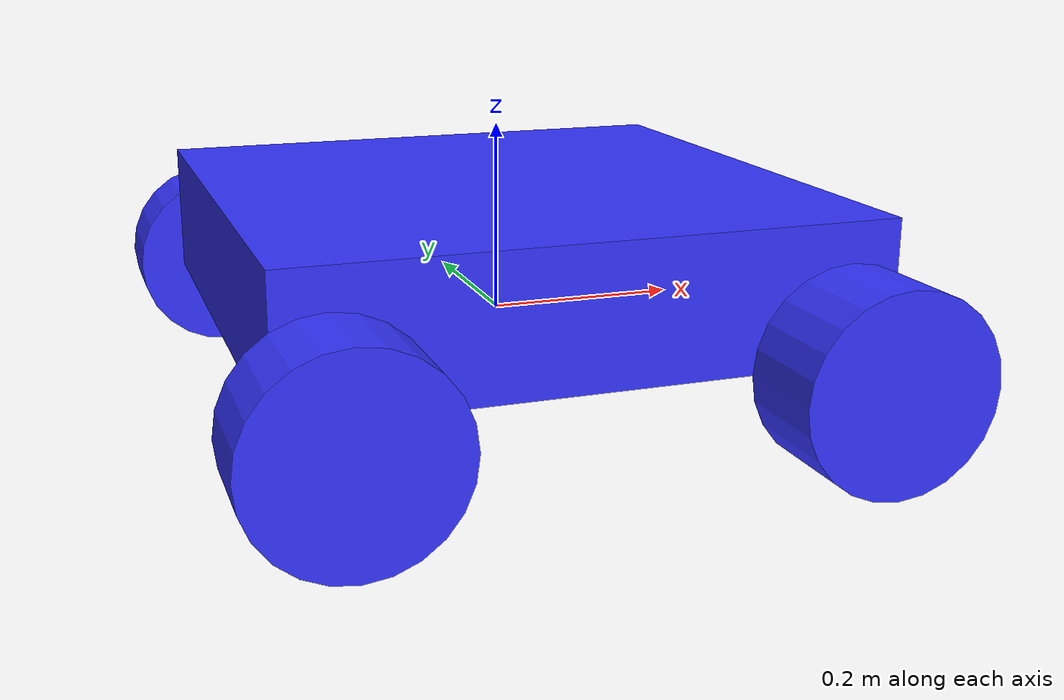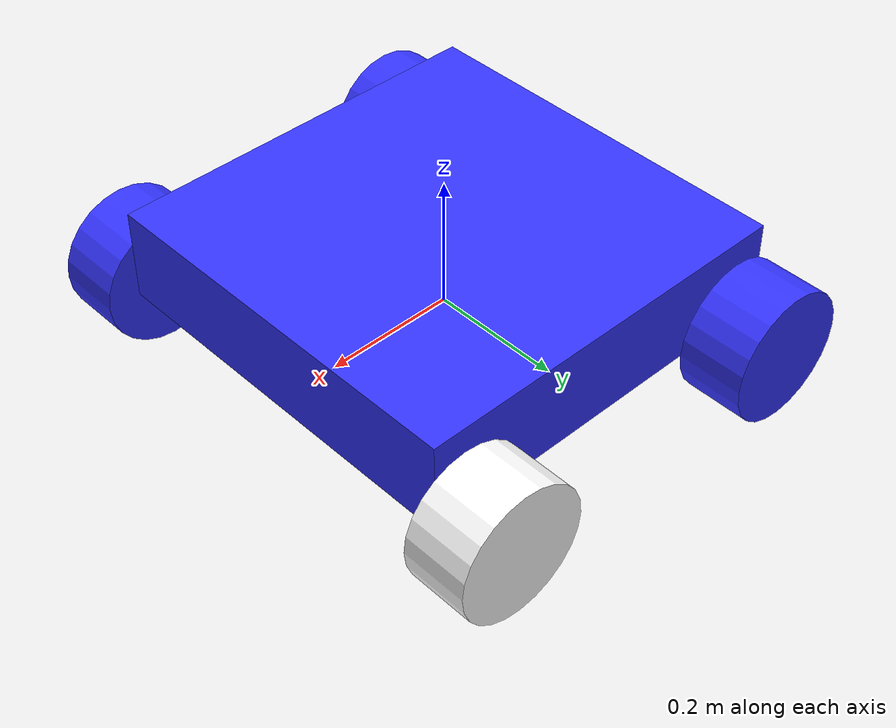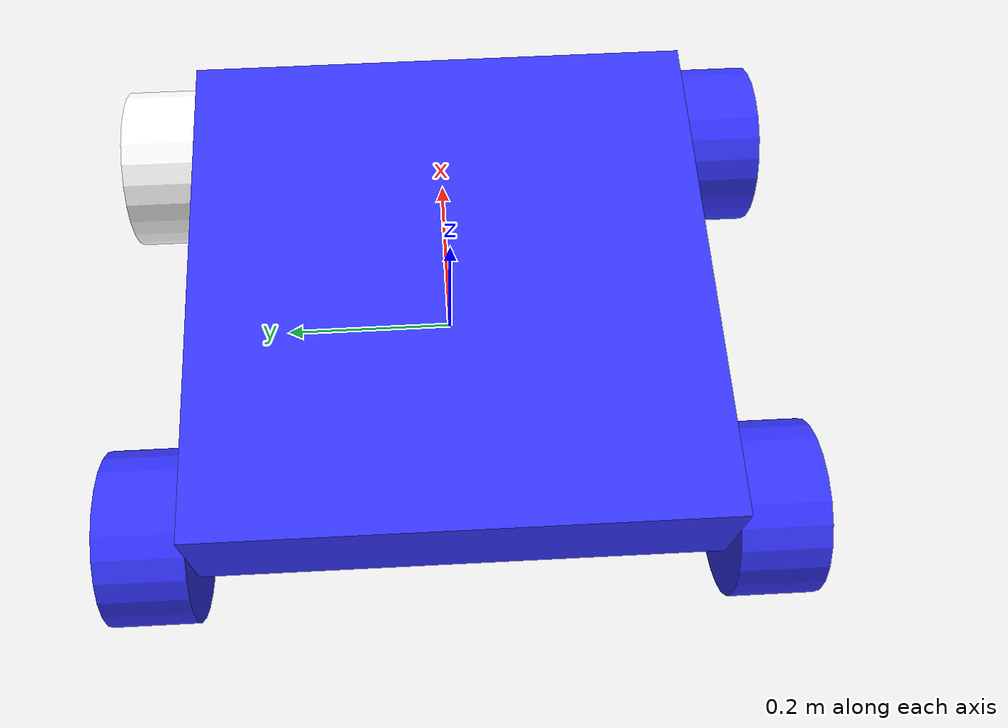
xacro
<?xml version="1.0"?>
<robot xmlns:xacro="http://www.ros.org/wiki/xacro" >

    <xacro:include filename="inertial_macros.xacro"/>

    <material name="white">
        <color rgba="1 1 1 1" />
    </material>

    <material name="orange">
        <color rgba="1 0.3 0.1 1"/>
    </material>

    <material name="blue">
        <color rgba="0.2 0.2 1 1"/>
    </material>

    <material name="black">
        <color rgba="0 0 0 1"/>
    </material>

    <!-- BASE LINK -->

    <link name="base_link">

    </link>

    <!-- CHASSIS LINK -->

    <joint name="chassis_joint" type="fixed">
        <parent link="base_link"/>
        <child link="chassis"/>
        <origin xyz="-0.3 0 0"/>
    </joint>

    <link name="chassis">
        <visual>
            <origin xyz="0.3 0 .07"/>
            <geometry>
                <box size="0.6 0.60 0.14"/>
            </geometry>
            <material name="blue"/>
        </visual>
        <collision>
            <origin xyz="0.3 0 0.07"/>
            <geometry>
                <box size="0.6 0.6 0.14"/>
            </geometry>
        </collision>
        <xacro:inertial_box mass="0.5" x="0.6" y="0.6" z="0.14">
            <origin xyz="0.3 0 0.07" rpy="0 0 0"/>
        </xacro:inertial_box>
    </link>

   <gazebo reference="chassis">
        <material>Gazebo/White</material>
    </gazebo>

    <!-- LEFT WHEEL LINK -->

    <joint name="front_left_wheel_joint" type="fixed">
        <parent link="base_link"/>
        <child link="front_left_wheel"/>
        <origin xyz="0.25 0.35 0" rpy="-${pi/2} 0 0" />
        <axis xyz="0 0 1"/>
    </joint>

    <link name="front_left_wheel">
        <visual>
            <geometry>
                <cylinder radius="0.1" length="0.1"/>
            </geometry>
            <material name="white"/>
        </visual>
        <collision>
            <geometry>
                <cylinder radius="0.1" length="0.1"/>
            </geometry>
        </collision>
        <xacro:inertial_cylinder mass="0.1" length="0.1" radius="0.1">
            <origin xyz="0 0 0" rpy="0 0 0"/>
        </xacro:inertial_cylinder>
    </link>

     <gazebo reference="front_left_wheel">
        <material>Gazebo/Blue</material>
        <mu1 value="0.0001"/>
        <mu2 value="0.0001"/>
    </gazebo>
    <!-- RIGHT WHEEL LINK -->

    <joint name="front_right_wheel_joint" type="fixed">
        <parent link="base_link"/>
        <child link="front_right_wheel"/>
        <origin xyz="0.25 -0.35 0" rpy="${pi/2} 0 0" />
        <axis xyz="0 0 -1"/>
    </joint>

    <link name="front_right_wheel">
        <visual>
            <geometry>
                <cylinder radius="0.1" length="0.1"/>
            </geometry>
            <material name="blue"/>
        </visual>
        <collision>
            <geometry>
                <cylinder radius="0.1" length="0.1"/>
            </geometry>
        </collision>
        <xacro:inertial_cylinder mass="0.1" length="0.1" radius="0.1">
            <origin xyz="0 0 0" rpy="0 0 0"/>
        </xacro:inertial_cylinder>
    </link>
     <gazebo reference="front_right_wheel">
        <material>Gazebo/Blue</material>
        <mu1 value="0.0001"/>
        <mu2 value="0.0001"/>
    </gazebo>

    <joint name="back_left_wheel_joint" type="continuous">
        <parent link="base_link"/>
        <child link="back_left_wheel"/>
        <origin xyz="-0.25 0.35 0" rpy="-${pi/2} 0 0" />
        <axis xyz="0 0 1"/>
    </joint>

    <link name="back_left_wheel">
        <visual>
            <geometry>
                <cylinder radius="0.1" length="0.1"/>
            </geometry>
            <material name="blue"/>
        </visual>
        <collision>
            <geometry>
                <cylinder radius="0.1" length="0.1"/>
            </geometry>
        </collision>
        <xacro:inertial_cylinder mass="0.1" length="0.1" radius="0.1">
            <origin xyz="0 0 0" rpy="0 0 0"/>
        </xacro:inertial_cylinder>
    </link>
    <gazebo reference="back_left_wheel">
        <material>Gazebo/Blue</material>
    </gazebo>
    <!-- RIGHT WHEEL LINK -->

    <joint name="back_right_wheel_joint" type="continuous">
        <parent link="base_link"/>
        <child link="back_right_wheel"/>
        <origin xyz="-0.25 -0.35 0" rpy="${pi/2} 0 0" />
        <axis xyz="0 0 -1"/>
    </joint>

    <link name="back_right_wheel">
        <visual>
            <geometry>
                <cylinder radius="0.1" length="0.1"/>
            </geometry>
            <material name="blue"/>
        </visual>
        <collision>
            <geometry>
                <cylinder radius="0.1" length="0.1"/>
            </geometry>
        </collision>
        <xacro:inertial_cylinder mass="0.1" length="0.1" radius="0.1">
            <origin xyz="0 0 0" rpy="0 0 0"/>
        </xacro:inertial_cylinder>
    </link>
    <gazebo reference="back_right_wheel">
        <material>Gazebo/Blue</material>
    </gazebo>
    <!-- CASTER WHEEL LINK -->

</robot>
